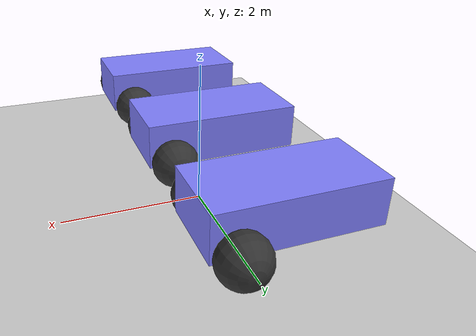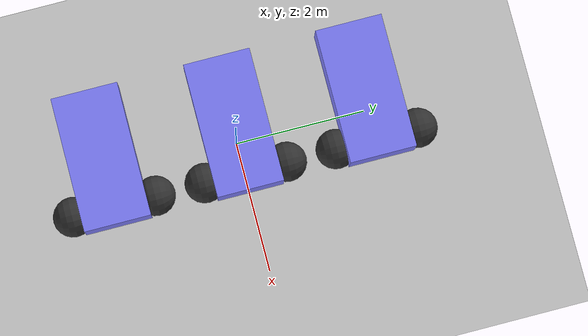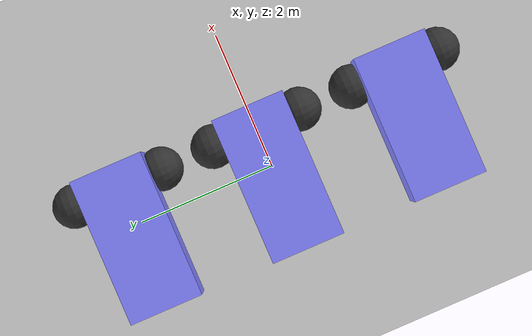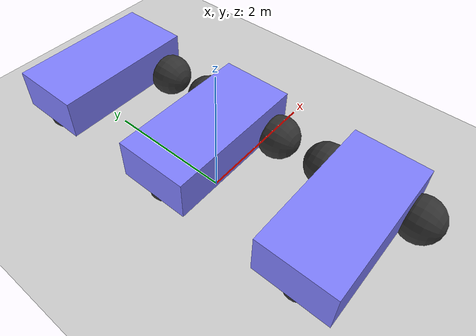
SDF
<?xml version="1.0" ?>

<sdf version="1.12">
  <world name="multi_robot">

    <plugin
      filename="gz-sim-imu-system"
      name="gz::sim::systems::Imu">
    </plugin>

    <light name="sun" type="directional">
      <cast_shadows>true</cast_shadows>
      <pose>0 0 10 0 0 0</pose>
      <diffuse>0.8 0.8 0.8 1</diffuse>
      <specular>0.2 0.2 0.2 1</specular>
      <attenuation>
        <range>1000</range>
        <constant>0.9</constant>
        <linear>0.01</linear>
        <quadratic>0.001</quadratic>
      </attenuation>
      <direction>-0.5 0.1 -0.9</direction>
    </light>

    <model name="ground_plane">
      <static>true</static>
      <link name="link">
        <collision name="collision">
          <geometry>
            <plane>
              <normal>0 0 1</normal>
              <size>100 100</size>
            </plane>
          </geometry>
        </collision>
        <visual name="visual">
          <geometry>
            <plane>
              <normal>0 0 1</normal>
              <size>100 100</size>
            </plane>
          </geometry>
          <material>
            <ambient>0.8 0.8 0.8 1</ambient>
            <diffuse>0.8 0.8 0.8 1</diffuse>
            <specular>0.8 0.8 0.8 1</specular>
          </material>
        </visual>
      </link>
    </model>

    <include>
      <uri>package://demo_original/models/vehicle_group_1</uri>
      <name>vehicle_group_1</name>
      <pose>0 0 0 0 0 0</pose>
    </include>

  </world>
</sdf>

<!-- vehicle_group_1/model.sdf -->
<sdf version="1.12">
  <model name="vehicle_group">
    <link name="dummy_link"/>

    <include>
      <name>vehicle_1</name>
      <pose>0 -2 1 0 0 0</pose>
      <uri>model://demo_original/models/vehicle_1_1</uri>
    </include>

    <include>
      <name>vehicle_2</name>
      <pose>0 0 1 0 0 0</pose>
      <uri>model://demo_original/models/vehicle_1_2</uri>
    </include>

    <include>
      <name>vehicle_3</name>
      <pose>0 2 1 0 0 0</pose>
      <uri>model://demo_original/models/vehicle_1_3</uri>
    </include>

  </model>
</sdf>

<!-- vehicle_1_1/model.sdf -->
<sdf version="1.12">
    <model name='vehicle'>
      <link name='chassis'>
        <pose>-0.151427 -0 0.175 0 -0 0</pose>
        <inertial>
          <mass>1.14395</mass>
          <inertia>
            <ixx>0.126164</ixx>
            <ixy>0</ixy>
            <ixz>0</ixz>
            <iyy>0.416519</iyy>
            <iyz>0</iyz>
            <izz>0.481014</izz>
          </inertia>
        </inertial>
        <visual name='visual_chassis'>
          <geometry>
            <box>
              <size>2.01142 1 0.568726</size>
            </box>
          </geometry>
          <material>
            <ambient>0.5 0.5 1.0 1</ambient>
            <diffuse>0.5 0.5 1.0 1</diffuse>
            <specular>0.0 0.0 1.0 1</specular>
          </material>
        </visual>
        <collision name='collision_chassis'>
          <geometry>
            <box>
              <size>2.01142 1 0.568726</size>
            </box>
          </geometry>
        </collision>
        <sensor name="imu_sensor" type="imu">
          <topic>/vehicle_group_1/banana/imu</topic>
          <always_on>1</always_on>
          <update_rate>30</update_rate>
          <visualize>true</visualize>
        </sensor>
      </link>

      <link name='left_wheel'>
        <pose>0.554283 0.625029 -0.025 -1.5707 0 0</pose>
        <inertial>
          <mass>2</mass>
          <inertia>
            <ixx>0.145833</ixx>
            <ixy>0</ixy>
            <ixz>0</ixz>
            <iyy>0.145833</iyy>
            <iyz>0</iyz>
            <izz>0.125</izz>
          </inertia>
        </inertial>
        <visual name='visual_left_wheel'>
          <geometry>
            <sphere>
              <radius>0.3</radius>
            </sphere>
          </geometry>
          <material>
            <ambient>0.2 0.2 0.2 1</ambient>
            <diffuse>0.2 0.2 0.2 1</diffuse>
            <specular>0.2 0.2 0.2 1</specular>
          </material>
        </visual>
        <collision name='collision_left_wheel'>
          <geometry>
            <sphere>
              <radius>0.3</radius>
            </sphere>
          </geometry>
        </collision>
      </link>

      <link name='right_wheel'>
        <pose>0.554282 -0.625029 -0.025 -1.5707 0 0</pose>
        <inertial>
          <mass>2</mass>
          <inertia>
            <ixx>0.145833</ixx>
            <ixy>0</ixy>
            <ixz>0</ixz>
            <iyy>0.145833</iyy>
            <iyz>0</iyz>
            <izz>0.125</izz>
          </inertia>
        </inertial>
        <visual name='visual_right_wheel'>
          <geometry>
            <sphere>
              <radius>0.3</radius>
            </sphere>
          </geometry>
          <material>
            <ambient>0.2 0.2 0.2 1</ambient>
            <diffuse>0.2 0.2 0.2 1</diffuse>
            <specular>0.2 0.2 0.2 1</specular>
          </material>
        </visual>
        <collision name='collision_right_wheel'>
          <geometry>
            <sphere>
              <radius>0.3</radius>
            </sphere>
          </geometry>
        </collision>
      </link>

      <link name='caster'>
        <pose>-0.957138 -0 -0.125 0 -0 0</pose>
        <inertial>
          <mass>1</mass>
          <inertia>
            <ixx>0.1</ixx>
            <ixy>0</ixy>
            <ixz>0</ixz>
            <iyy>0.1</iyy>
            <iyz>0</iyz>
            <izz>0.1</izz>
          </inertia>
        </inertial>
        <visual name='visual_caster'>
          <geometry>
            <sphere>
              <radius>0.2</radius>
            </sphere>
          </geometry>
          <material>
            <ambient>0.2 0.2 0.2 1</ambient>
            <diffuse>0.2 0.2 0.2 1</diffuse>
            <specular>0.2 0.2 0.2 1</specular>
          </material>
        </visual>
        <collision name='collision_caster'>
          <geometry>
            <sphere>
              <radius>0.2</radius>
            </sphere>
          </geometry>
        </collision>
      </link>

      <joint name='left_wheel_joint' type='revolute'>
        <parent>chassis</parent>
        <child>left_wheel</child>
        <axis>
          <xyz>0 0 1</xyz>
          <limit>
            <lower>-1.79769e+308</lower>
            <upper>1.79769e+308</upper>
          </limit>
        </axis>
      </joint>

      <joint name='right_wheel_joint' type='revolute'>
        <parent>chassis</parent>
        <child>right_wheel</child>
        <axis>
          <xyz>0 0 1</xyz>
          <limit>
            <lower>-1.79769e+308</lower>
            <upper>1.79769e+308</upper>
          </limit>
        </axis>
      </joint>

      <joint name='caster_wheel' type='ball'>
        <parent>chassis</parent>
        <child>caster</child>
      </joint>

      <plugin
        filename="gz-sim-diff-drive-system"
        name="gz::sim::systems::DiffDrive">
        <topic>/vehicle_group_1/banana/cmd_vel</topic>
        <odom_topic>/vehicle_group_1/banana/odometry</odom_topic>
        <tf_topic>/vehicle_group_1/banana/tf</tf_topic>
        <left_joint>left_wheel_joint</left_joint>
        <right_joint>right_wheel_joint</right_joint>
        <wheel_separation>1.25</wheel_separation>
        <wheel_radius>0.3</wheel_radius>
        <odom_publish_frequency>1</odom_publish_frequency>
        <max_linear_acceleration>1</max_linear_acceleration>
        <min_linear_acceleration>-1</min_linear_acceleration>
        <max_angular_acceleration>2</max_angular_acceleration>
        <min_angular_acceleration>-2</min_angular_acceleration>
        <max_linear_velocity>0.5</max_linear_velocity>
        <min_linear_velocity>-0.5</min_linear_velocity>
        <max_angular_velocity>1</max_angular_velocity>
        <min_angular_velocity>-1</min_angular_velocity>
      </plugin>

    </model>
</sdf>

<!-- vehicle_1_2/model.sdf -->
<sdf version="1.12">
    <model name='vehicle'>
      <link name='chassis'>
        <pose>-0.151427 -0 0.175 0 -0 0</pose>
        <inertial>
          <mass>1.14395</mass>
          <inertia>
            <ixx>0.126164</ixx>
            <ixy>0</ixy>
            <ixz>0</ixz>
            <iyy>0.416519</iyy>
            <iyz>0</iyz>
            <izz>0.481014</izz>
          </inertia>
        </inertial>
        <visual name='visual_chassis'>
          <geometry>
            <box>
              <size>2.01142 1 0.568726</size>
            </box>
          </geometry>
          <material>
            <ambient>0.5 0.5 1.0 1</ambient>
            <diffuse>0.5 0.5 1.0 1</diffuse>
            <specular>0.0 0.0 1.0 1</specular>
          </material>
        </visual>
        <collision name='collision_chassis'>
          <geometry>
            <box>
              <size>2.01142 1 0.568726</size>
            </box>
          </geometry>
        </collision>
        <sensor name="imu_sensor" type="imu">
          <topic>/vehicle_group_1/orange/imu</topic>
          <always_on>1</always_on>
          <update_rate>30</update_rate>
          <visualize>true</visualize>
        </sensor>
      </link>

      <link name='left_wheel'>
        <pose>0.554283 0.625029 -0.025 -1.5707 0 0</pose>
        <inertial>
          <mass>2</mass>
          <inertia>
            <ixx>0.145833</ixx>
            <ixy>0</ixy>
            <ixz>0</ixz>
            <iyy>0.145833</iyy>
            <iyz>0</iyz>
            <izz>0.125</izz>
          </inertia>
        </inertial>
        <visual name='visual_left_wheel'>
          <geometry>
            <sphere>
              <radius>0.3</radius>
            </sphere>
          </geometry>
          <material>
            <ambient>0.2 0.2 0.2 1</ambient>
            <diffuse>0.2 0.2 0.2 1</diffuse>
            <specular>0.2 0.2 0.2 1</specular>
          </material>
        </visual>
        <collision name='collision_left_wheel'>
          <geometry>
            <sphere>
              <radius>0.3</radius>
            </sphere>
          </geometry>
        </collision>
      </link>

      <link name='right_wheel'>
        <pose>0.554282 -0.625029 -0.025 -1.5707 0 0</pose>
        <inertial>
          <mass>2</mass>
          <inertia>
            <ixx>0.145833</ixx>
            <ixy>0</ixy>
            <ixz>0</ixz>
            <iyy>0.145833</iyy>
            <iyz>0</iyz>
            <izz>0.125</izz>
          </inertia>
        </inertial>
        <visual name='visual_right_wheel'>
          <geometry>
            <sphere>
              <radius>0.3</radius>
            </sphere>
          </geometry>
          <material>
            <ambient>0.2 0.2 0.2 1</ambient>
            <diffuse>0.2 0.2 0.2 1</diffuse>
            <specular>0.2 0.2 0.2 1</specular>
          </material>
        </visual>
        <collision name='collision_right_wheel'>
          <geometry>
            <sphere>
              <radius>0.3</radius>
            </sphere>
          </geometry>
        </collision>
      </link>

      <link name='caster'>
        <pose>-0.957138 -0 -0.125 0 -0 0</pose>
        <inertial>
          <mass>1</mass>
          <inertia>
            <ixx>0.1</ixx>
            <ixy>0</ixy>
            <ixz>0</ixz>
            <iyy>0.1</iyy>
            <iyz>0</iyz>
            <izz>0.1</izz>
          </inertia>
        </inertial>
        <visual name='visual_caster'>
          <geometry>
            <sphere>
              <radius>0.2</radius>
            </sphere>
          </geometry>
          <material>
            <ambient>0.2 0.2 0.2 1</ambient>
            <diffuse>0.2 0.2 0.2 1</diffuse>
            <specular>0.2 0.2 0.2 1</specular>
          </material>
        </visual>
        <collision name='collision_caster'>
          <geometry>
            <sphere>
              <radius>0.2</radius>
            </sphere>
          </geometry>
        </collision>
      </link>

      <joint name='left_wheel_joint' type='revolute'>
        <parent>chassis</parent>
        <child>left_wheel</child>
        <axis>
          <xyz>0 0 1</xyz>
          <limit>
            <lower>-1.79769e+308</lower>
            <upper>1.79769e+308</upper>
          </limit>
        </axis>
      </joint>

      <joint name='right_wheel_joint' type='revolute'>
        <parent>chassis</parent>
        <child>right_wheel</child>
        <axis>
          <xyz>0 0 1</xyz>
          <limit>
            <lower>-1.79769e+308</lower>
            <upper>1.79769e+308</upper>
          </limit>
        </axis>
      </joint>

      <joint name='caster_wheel' type='ball'>
        <parent>chassis</parent>
        <child>caster</child>
      </joint>

      <plugin
        filename="gz-sim-diff-drive-system"
        name="gz::sim::systems::DiffDrive">
        <topic>/vehicle_group_1/orange/cmd_vel</topic>
        <odom_topic>/vehicle_group_1/orange/odometry</odom_topic>
        <tf_topic>/vehicle_group_1/orange/tf</tf_topic>
        <left_joint>left_wheel_joint</left_joint>
        <right_joint>right_wheel_joint</right_joint>
        <wheel_separation>1.25</wheel_separation>
        <wheel_radius>0.3</wheel_radius>
        <odom_publish_frequency>1</odom_publish_frequency>
        <max_linear_acceleration>1</max_linear_acceleration>
        <min_linear_acceleration>-1</min_linear_acceleration>
        <max_angular_acceleration>2</max_angular_acceleration>
        <min_angular_acceleration>-2</min_angular_acceleration>
        <max_linear_velocity>0.5</max_linear_velocity>
        <min_linear_velocity>-0.5</min_linear_velocity>
        <max_angular_velocity>1</max_angular_velocity>
        <min_angular_velocity>-1</min_angular_velocity>
      </plugin>

    </model>
</sdf>

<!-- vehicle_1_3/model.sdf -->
<sdf version="1.12">
    <model name='vehicle'>
      <link name='chassis'>
        <pose>-0.151427 -0 0.175 0 -0 0</pose>
        <inertial>
          <mass>1.14395</mass>
          <inertia>
            <ixx>0.126164</ixx>
            <ixy>0</ixy>
            <ixz>0</ixz>
            <iyy>0.416519</iyy>
            <iyz>0</iyz>
            <izz>0.481014</izz>
          </inertia>
        </inertial>
        <visual name='visual_chassis'>
          <geometry>
            <box>
              <size>2.01142 1 0.568726</size>
            </box>
          </geometry>
          <material>
            <ambient>0.5 0.5 1.0 1</ambient>
            <diffuse>0.5 0.5 1.0 1</diffuse>
            <specular>0.0 0.0 1.0 1</specular>
          </material>
        </visual>
        <collision name='collision_chassis'>
          <geometry>
            <box>
              <size>2.01142 1 0.568726</size>
            </box>
          </geometry>
        </collision>
        <sensor name="imu_sensor" type="imu">
          <topic>/vehicle_group_1/grape/imu</topic>
          <always_on>1</always_on>
          <update_rate>30</update_rate>
          <visualize>true</visualize>
        </sensor>
      </link>

      <link name='left_wheel'>
        <pose>0.554283 0.625029 -0.025 -1.5707 0 0</pose>
        <inertial>
          <mass>2</mass>
          <inertia>
            <ixx>0.145833</ixx>
            <ixy>0</ixy>
            <ixz>0</ixz>
            <iyy>0.145833</iyy>
            <iyz>0</iyz>
            <izz>0.125</izz>
          </inertia>
        </inertial>
        <visual name='visual_left_wheel'>
          <geometry>
            <sphere>
              <radius>0.3</radius>
            </sphere>
          </geometry>
          <material>
            <ambient>0.2 0.2 0.2 1</ambient>
            <diffuse>0.2 0.2 0.2 1</diffuse>
            <specular>0.2 0.2 0.2 1</specular>
          </material>
        </visual>
        <collision name='collision_left_wheel'>
          <geometry>
            <sphere>
              <radius>0.3</radius>
            </sphere>
          </geometry>
        </collision>
      </link>

      <link name='right_wheel'>
        <pose>0.554282 -0.625029 -0.025 -1.5707 0 0</pose>
        <inertial>
          <mass>2</mass>
          <inertia>
            <ixx>0.145833</ixx>
            <ixy>0</ixy>
            <ixz>0</ixz>
            <iyy>0.145833</iyy>
            <iyz>0</iyz>
            <izz>0.125</izz>
          </inertia>
        </inertial>
        <visual name='visual_right_wheel'>
          <geometry>
            <sphere>
              <radius>0.3</radius>
            </sphere>
          </geometry>
          <material>
            <ambient>0.2 0.2 0.2 1</ambient>
            <diffuse>0.2 0.2 0.2 1</diffuse>
            <specular>0.2 0.2 0.2 1</specular>
          </material>
        </visual>
        <collision name='collision_right_wheel'>
          <geometry>
            <sphere>
              <radius>0.3</radius>
            </sphere>
          </geometry>
        </collision>
      </link>

      <link name='caster'>
        <pose>-0.957138 -0 -0.125 0 -0 0</pose>
        <inertial>
          <mass>1</mass>
          <inertia>
            <ixx>0.1</ixx>
            <ixy>0</ixy>
            <ixz>0</ixz>
            <iyy>0.1</iyy>
            <iyz>0</iyz>
            <izz>0.1</izz>
          </inertia>
        </inertial>
        <visual name='visual_caster'>
          <geometry>
            <sphere>
              <radius>0.2</radius>
            </sphere>
          </geometry>
          <material>
            <ambient>0.2 0.2 0.2 1</ambient>
            <diffuse>0.2 0.2 0.2 1</diffuse>
            <specular>0.2 0.2 0.2 1</specular>
          </material>
        </visual>
        <collision name='collision_caster'>
          <geometry>
            <sphere>
              <radius>0.2</radius>
            </sphere>
          </geometry>
        </collision>
      </link>

      <joint name='left_wheel_joint' type='revolute'>
        <parent>chassis</parent>
        <child>left_wheel</child>
        <axis>
          <xyz>0 0 1</xyz>
          <limit>
            <lower>-1.79769e+308</lower>
            <upper>1.79769e+308</upper>
          </limit>
        </axis>
      </joint>

      <joint name='right_wheel_joint' type='revolute'>
        <parent>chassis</parent>
        <child>right_wheel</child>
        <axis>
          <xyz>0 0 1</xyz>
          <limit>
            <lower>-1.79769e+308</lower>
            <upper>1.79769e+308</upper>
          </limit>
        </axis>
      </joint>

      <joint name='caster_wheel' type='ball'>
        <parent>chassis</parent>
        <child>caster</child>
      </joint>

      <plugin
        filename="gz-sim-diff-drive-system"
        name="gz::sim::systems::DiffDrive">
        <topic>/vehicle_group_1/grape/cmd_vel</topic>
        <odom_topic>/vehicle_group_1/grape/odometry</odom_topic>
        <tf_topic>/vehicle_group_1/grape/tf</tf_topic>
        <left_joint>left_wheel_joint</left_joint>
        <right_joint>right_wheel_joint</right_joint>
        <wheel_separation>1.25</wheel_separation>
        <wheel_radius>0.3</wheel_radius>
        <odom_publish_frequency>1</odom_publish_frequency>
        <max_linear_acceleration>1</max_linear_acceleration>
        <min_linear_acceleration>-1</min_linear_acceleration>
        <max_angular_acceleration>2</max_angular_acceleration>
        <min_angular_acceleration>-2</min_angular_acceleration>
        <max_linear_velocity>0.5</max_linear_velocity>
        <min_linear_velocity>-0.5</min_linear_velocity>
        <max_angular_velocity>1</max_angular_velocity>
        <min_angular_velocity>-1</min_angular_velocity>
      </plugin>

    </model>
</sdf>
